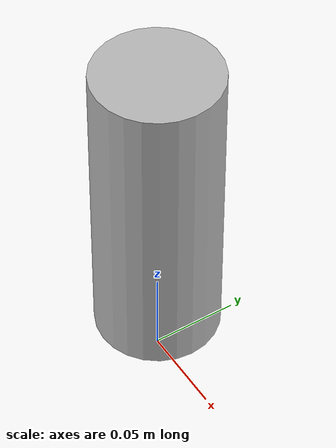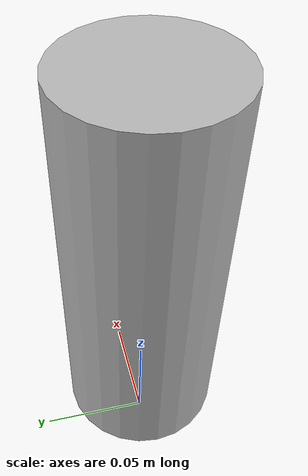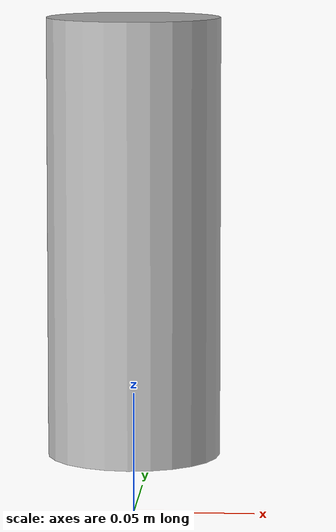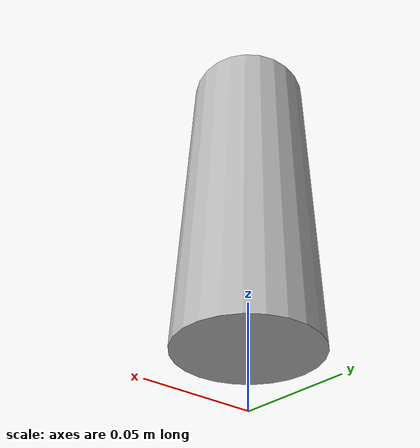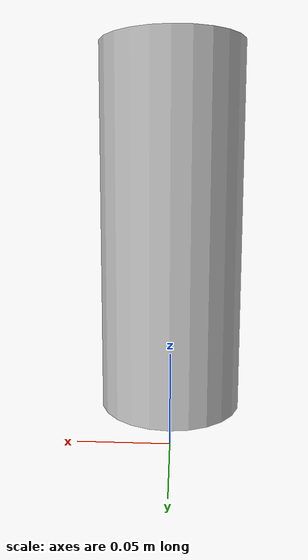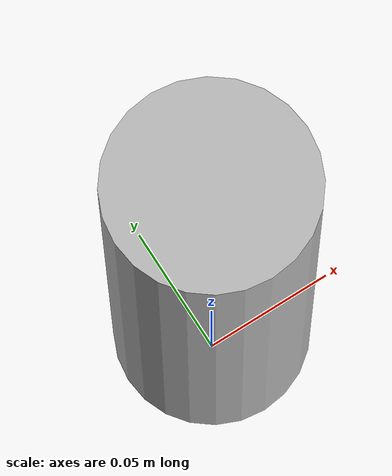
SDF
<?xml version='1.0'?>
<sdf version='1.4'>
  <model name="goldstar_beer">
    <link name='link'>
      <pose>0 0 0.115 0 0 0</pose>
      <inertial>
        <mass>0.390</mass>
        <inertia>
          <ixx>0.00058</ixx>
          <ixy>0</ixy>
          <ixz>0</ixz>
          <iyy>0.00058</iyy>
          <iyz>0</iyz>
          <izz>0.00019</izz>
        </inertia>
      </inertial>
      <collision name='collision'>
        <geometry>
          <cylinder>
            <radius>0.0355000</radius>
            <length>0.180000</length>
          </cylinder>
        </geometry>
      </collision>

      <visual name='visual'>
        <geometry>
          <cylinder>
            <radius>0.0355000</radius>
            <length>0.180000</length>
          </cylinder>
        </geometry>

        <material>
          <script>
            <uri>model://goldstar_beer/materials/scripts</uri>
            <uri>model://goldstar_beer/materials/textures</uri>
            <name>Beer/Diffuse</name>
          </script>
        </material>
      </visual>
    </link>
  </model>
</sdf>
